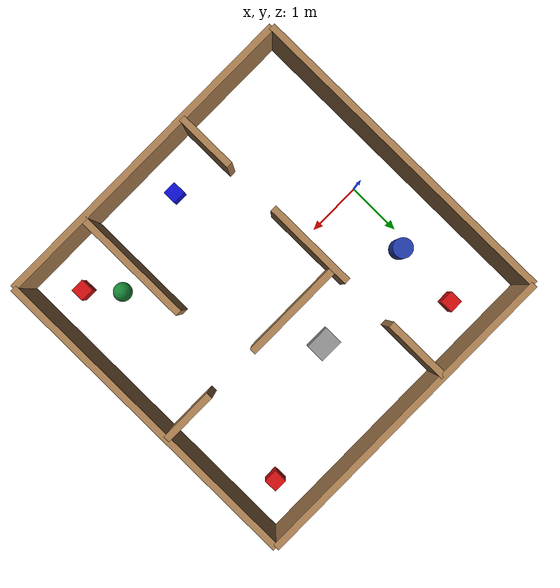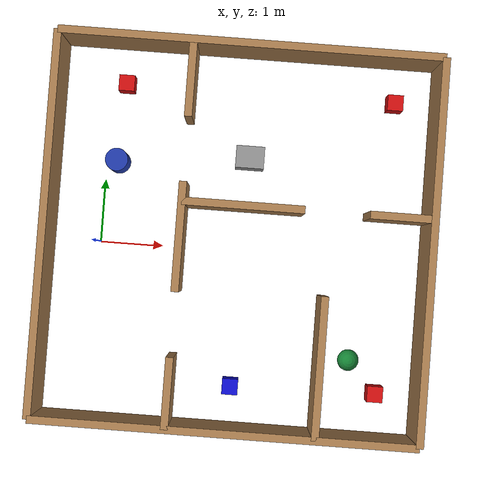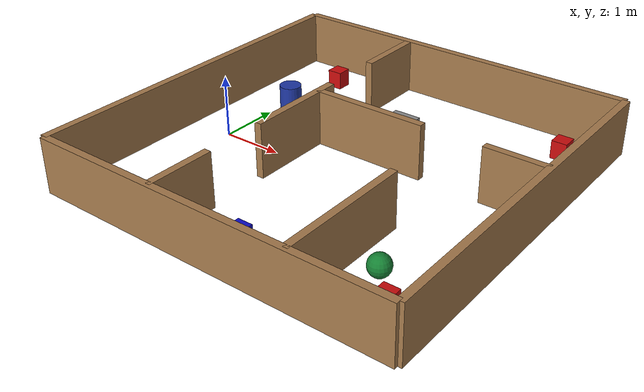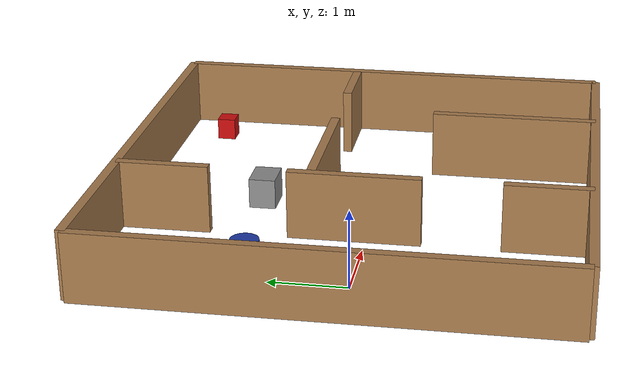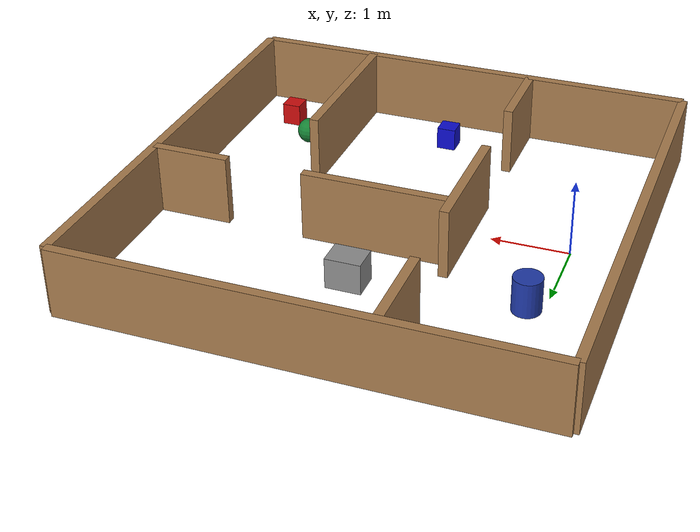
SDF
<sdf version="1.5">
 <world name="tars_desvios">
  <physics type="ode">
   <max_step_size>0.001</max_step_size>
   <real_time_factor>1</real_time_factor>
   <real_time_update_rate>1000</real_time_update_rate>
   <gravity>0 0 -9.8</gravity>
  </physics>
  <plugin filename="gz-sim-physics-system" name="gz::sim::systems::Physics"/>
  <plugin filename="gz-sim-user-commands-system" name="gz::sim::systems::UserCommands"/>
  <plugin filename="gz-sim-scene-broadcaster-system" name="gz::sim::systems::SceneBroadcaster"/>
  <plugin filename="gz-sim-contact-system" name="gz::sim::systems::Contact"/>
  <plugin filename="gz-sim-sensors-system" name="gz::sim::systems::Sensors">
   <render_engine>ogre2</render_engine>
  </plugin>
  <plugin filename="gz-sim-imu-system" name="gz::sim::systems::Imu"/>
  <scene>
   <shadows>false</shadows>
   <ambient>0.2 0.2 0.2 1</ambient>
   <background>1 1 1 1</background>
   <grid>false</grid>
   <origin_visual>false</origin_visual>
  </scene>
  <include><uri>model://sun</uri></include>
  <light name="camera_spot_1_light" type="spot">
   <pose>-6 4 4 0 -1 -0.8</pose>
   <diffuse>0.5 0.5 0.5 1</diffuse>
   <specular>0.1 0.1 0.1 1</specular>
   <direction>0 0 -1</direction>
   <attenuation>
    <range>20</range>
    <constant>0.2</constant>
    <linear>0.01</linear>
    <quadratic>0.001</quadratic>
   </attenuation>
   <cast_shadows>0</cast_shadows>
   <spot><inner_angle>0.6</inner_angle><outer_angle>1</outer_angle><falloff>1</falloff></spot>
  </light>
  <light name="camera_spot_2_light" type="spot">
   <pose>5 -3 4 0 0.8 -0.6</pose>
   <diffuse>0.5 0.5 0.5 1</diffuse>
   <specular>0.1 0.1 0.1 1</specular>
   <direction>0 0 -1</direction>
   <attenuation>
    <range>20</range>
    <constant>0.3</constant>
    <linear>0.01</linear>
    <quadratic>0.001</quadratic>
   </attenuation>
   <cast_shadows>0</cast_shadows>
   <spot><inner_angle>0.6</inner_angle><outer_angle>1</outer_angle><falloff>1</falloff></spot>
  </light>
  <model name="paredes_tars">
   <static>true</static>
   <link name="borde_sur">
    <pose>2.2 -2.8 0.45 0 0 0</pose>
    <collision name="collision"><geometry><box><size>6.0 0.12 0.9</size></box></geometry></collision>
    <visual name="visual">
     <geometry><box><size>6.0 0.12 0.9</size></box></geometry>
     <material><ambient>0.65 0.48 0.30 1</ambient><diffuse>0.65 0.48 0.30 1</diffuse></material>
    </visual>
   </link>
   <link name="borde_norte">
    <pose>2.2 3.2 0.45 0 0 0</pose>
    <collision name="collision"><geometry><box><size>6.0 0.12 0.9</size></box></geometry></collision>
    <visual name="visual">
     <geometry><box><size>6.0 0.12 0.9</size></box></geometry>
     <material><ambient>0.65 0.48 0.30 1</ambient><diffuse>0.65 0.48 0.30 1</diffuse></material>
    </visual>
   </link>
   <link name="borde_oeste">
    <pose>-0.8 0.20000000000000018 0.45 0 0 0</pose>
    <collision name="collision"><geometry><box><size>0.12 6.0 0.9</size></box></geometry></collision>
    <visual name="visual">
     <geometry><box><size>0.12 6.0 0.9</size></box></geometry>
     <material><ambient>0.65 0.48 0.30 1</ambient><diffuse>0.65 0.48 0.30 1</diffuse></material>
    </visual>
   </link>
   <link name="borde_este">
    <pose>5.2 0.20000000000000018 0.45 0 0 0</pose>
    <collision name="collision"><geometry><box><size>0.12 6.0 0.9</size></box></geometry></collision>
    <visual name="visual">
     <geometry><box><size>0.12 6.0 0.9</size></box></geometry>
     <material><ambient>0.65 0.48 0.30 1</ambient><diffuse>0.65 0.48 0.30 1</diffuse></material>
    </visual>
   </link>
   <link name="division_oeste_sur">
    <pose>1.3 -2.25 0.45 0 0 0</pose>
    <collision name="collision">
     <geometry><box><size>0.12 1.0999999999999999 0.9</size></box></geometry>
    </collision>
    <visual name="visual">
     <geometry><box><size>0.12 1.0999999999999999 0.9</size></box></geometry>
     <material><ambient>0.65 0.48 0.30 1</ambient><diffuse>0.65 0.48 0.30 1</diffuse></material>
    </visual>
   </link>
   <link name="division_oeste_centro">
    <pose>1.3 0.15000000000000002 0.45 0 0 0</pose>
    <collision name="collision"><geometry><box><size>0.12 1.7 0.9</size></box></geometry></collision>
    <visual name="visual">
     <geometry><box><size>0.12 1.7 0.9</size></box></geometry>
     <material><ambient>0.65 0.48 0.30 1</ambient><diffuse>0.65 0.48 0.30 1</diffuse></material>
    </visual>
   </link>
   <link name="division_oeste_norte">
    <pose>1.3 2.6 0.45 0 0 0</pose>
    <collision name="collision">
     <geometry><box><size>0.12 1.2000000000000002 0.9</size></box></geometry>
    </collision>
    <visual name="visual">
     <geometry><box><size>0.12 1.2000000000000002 0.9</size></box></geometry>
     <material><ambient>0.65 0.48 0.30 1</ambient><diffuse>0.65 0.48 0.30 1</diffuse></material>
    </visual>
   </link>
   <link name="division_norte_oeste">
    <pose>2.25 0.7 0.45 0 0 0</pose>
    <collision name="collision">
     <geometry><box><size>1.9000000000000001 0.12 0.9</size></box></geometry>
    </collision>
    <visual name="visual">
     <geometry><box><size>1.9000000000000001 0.12 0.9</size></box></geometry>
     <material><ambient>0.65 0.48 0.30 1</ambient><diffuse>0.65 0.48 0.30 1</diffuse></material>
    </visual>
   </link>
   <link name="division_norte_este">
    <pose>4.7 0.7 0.45 0 0 0</pose>
    <collision name="collision"><geometry><box><size>1.0 0.12 0.9</size></box></geometry></collision>
    <visual name="visual">
     <geometry><box><size>1.0 0.12 0.9</size></box></geometry>
     <material><ambient>0.65 0.48 0.30 1</ambient><diffuse>0.65 0.48 0.30 1</diffuse></material>
    </visual>
   </link>
   <link name="division_sur">
    <pose>3.6 -1.7 0.45 0 0 0</pose>
    <collision name="collision">
     <geometry><box><size>0.12 2.1999999999999997 0.9</size></box></geometry>
    </collision>
    <visual name="visual">
     <geometry><box><size>0.12 2.1999999999999997 0.9</size></box></geometry>
     <material><ambient>0.65 0.48 0.30 1</ambient><diffuse>0.65 0.48 0.30 1</diffuse></material>
    </visual>
   </link>
  </model>
  <model name="senuelo_obstaculos">
   <static>true</static>
   <link name="senuelo_cilindro">
    <pose>0.2 1.3 0.225 0 0 0</pose>
    <collision name="collision">
     <geometry><cylinder><radius>0.18</radius><length>0.45</length></cylinder></geometry>
    </collision>
    <visual name="visual">
     <geometry><cylinder><radius>0.18</radius><length>0.45</length></cylinder></geometry>
     <material><ambient>0.12 0.22 0.65 1</ambient><diffuse>0.12 0.22 0.65 1</diffuse></material>
    </visual>
   </link>
   <link name="senuelo_caja">
    <pose>2.3 1.5 0.2 0 0 0</pose>
    <collision name="collision"><geometry><box><size>0.45 0.35 0.4</size></box></geometry></collision>
    <visual name="visual">
     <geometry><box><size>0.45 0.35 0.4</size></box></geometry>
     <material><ambient>0.55 0.55 0.55 1</ambient><diffuse>0.55 0.55 0.55 1</diffuse></material>
    </visual>
   </link>
   <link name="senuelo_esfera">
    <pose>4.1 -1.6 0.17 0 0 0</pose>
    <collision name="collision"><geometry><sphere><radius>0.17</radius></sphere></geometry></collision>
    <visual name="visual">
     <geometry><sphere><radius>0.17</radius></sphere></geometry>
     <material><ambient>0.08 0.5 0.2 1</ambient><diffuse>0.08 0.5 0.2 1</diffuse></material>
    </visual>
   </link>
  </model>
  <model name="marcas_color">
   <static>true</static>
   <link name="cuadrado_rojo_1">
    <pose>0.25 2.55 .15 0 0 0</pose>
    <collision name="collision"><geometry><box><size>0.25 0.25 0.3</size></box></geometry></collision>
    <visual name="visual">
     <geometry><box><size>0.25 0.25 0.3</size></box></geometry>
     <material>
      <ambient>0.8 0.05 0.05 1</ambient>
      <diffuse>0.8 0.05 0.05 1</diffuse>
      <specular>0.1 0.1 0.1 1</specular>
     </material>
    </visual>
   </link>
   <link name="cuadrado_rojo_2">
    <pose>4.55 2.55 .15 0 0 0</pose>
    <collision name="collision"><geometry><box><size>0.25 0.25 0.3</size></box></geometry></collision>
    <visual name="visual">
     <geometry><box><size>0.25 0.25 0.3</size></box></geometry>
     <material>
      <ambient>0.8 0.05 0.05 1</ambient>
      <diffuse>0.8 0.05 0.05 1</diffuse>
      <specular>0.1 0.1 0.1 1</specular>
     </material>
    </visual>
   </link>
   <link name="cuadrado_rojo_3">
    <pose>4.55 -2.1 .15 0 0 0</pose>
    <collision name="collision"><geometry><box><size>0.25 0.25 0.3</size></box></geometry></collision>
    <visual name="visual">
     <geometry><box><size>0.25 0.25 0.3</size></box></geometry>
     <material>
      <ambient>0.8 0.05 0.05 1</ambient>
      <diffuse>0.8 0.05 0.05 1</diffuse>
      <specular>0.1 0.1 0.1 1</specular>
     </material>
    </visual>
   </link>
   <link name="cuadrado_azul_1">
    <pose>2.25 -2.15 .15 0 0 0</pose>
    <collision name="collision"><geometry><box><size>0.25 0.25 0.3</size></box></geometry></collision>
    <visual name="visual">
     <geometry><box><size>0.25 0.25 0.3</size></box></geometry>
     <material>
      <ambient>0.05 0.05 0.8 1</ambient>
      <diffuse>0.05 0.05 0.8 1</diffuse>
      <specular>0.1 0.1 0.1 1</specular>
     </material>
    </visual>
   </link>
  </model>
 </world>
</sdf>
